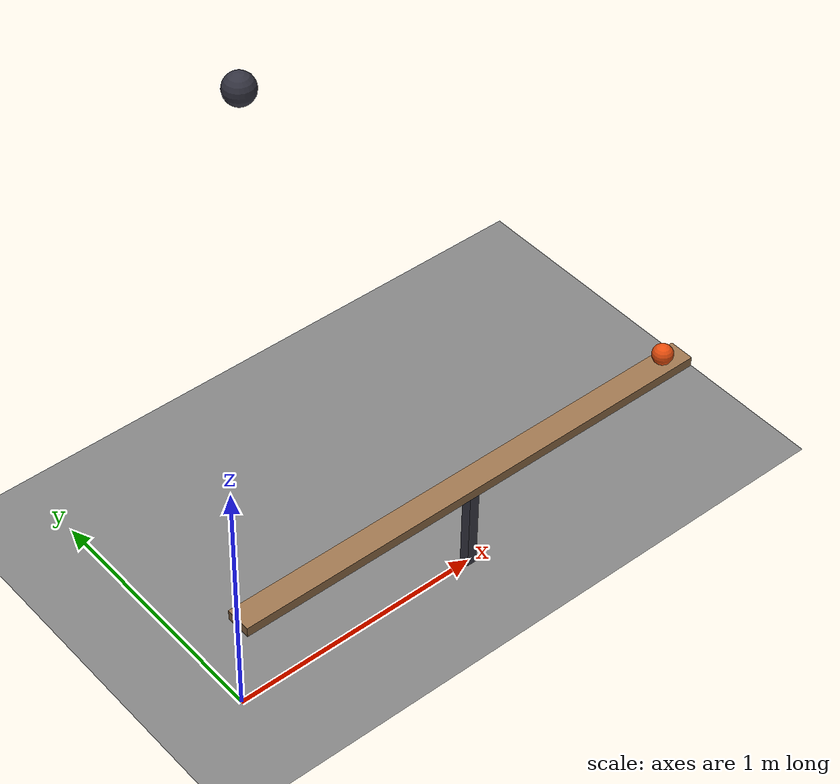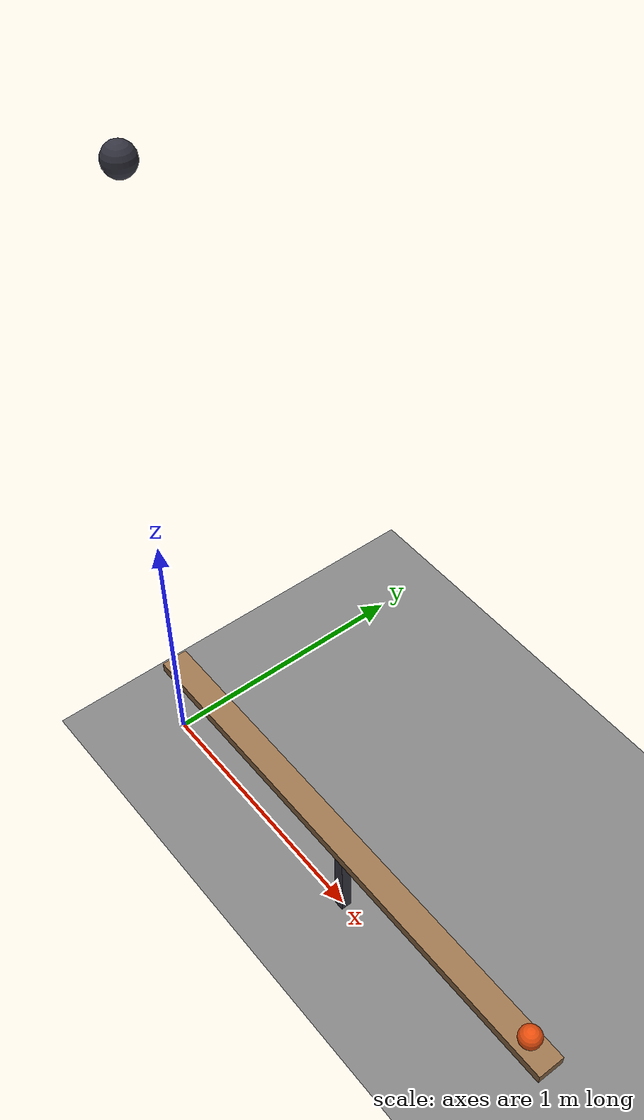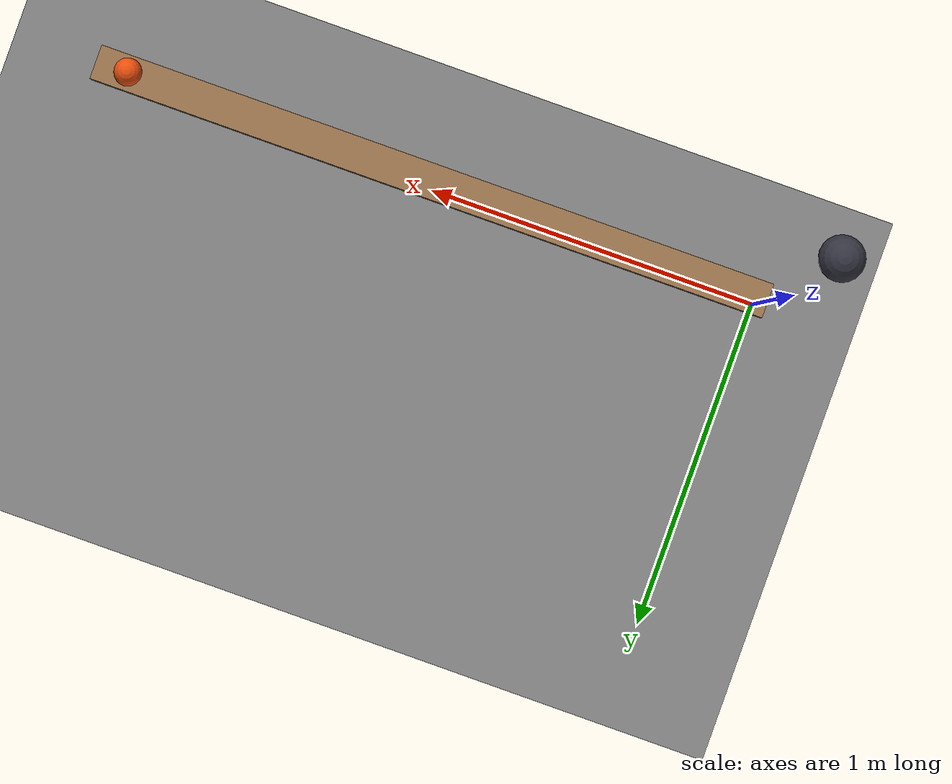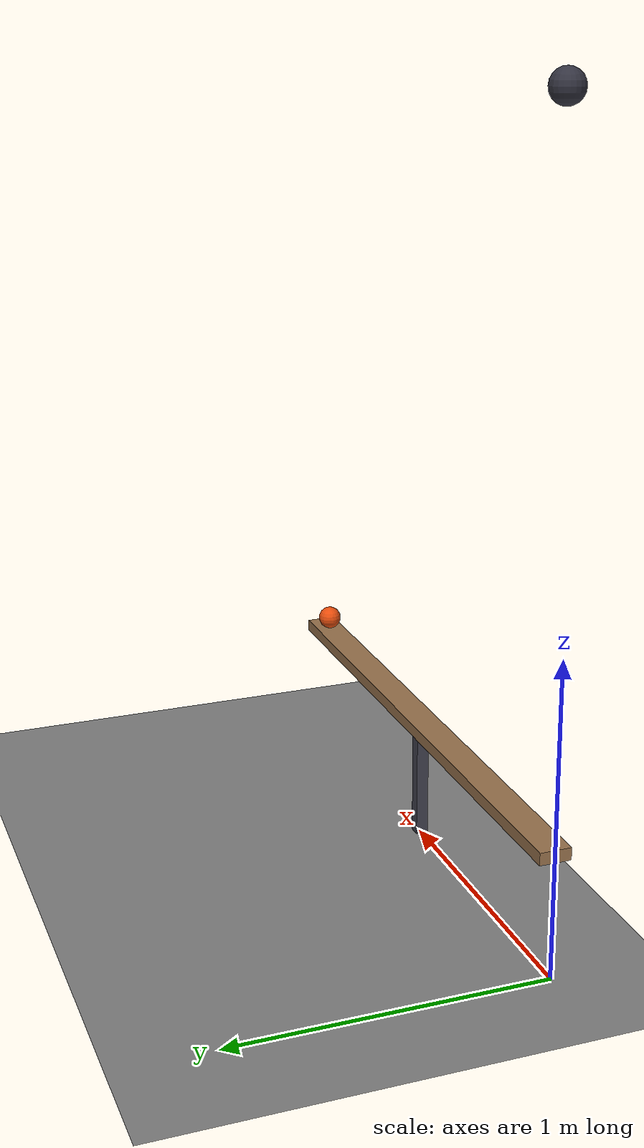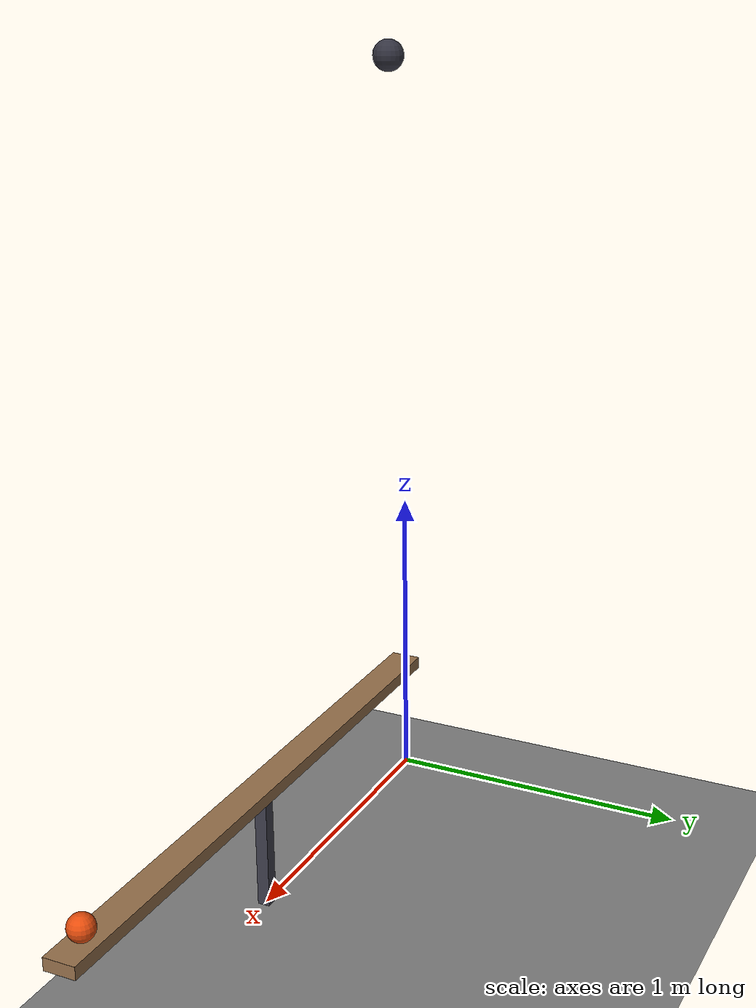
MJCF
<mujoco model="seesaw_throw">
  <compiler angle="radian"/>
  <option timestep="0.002"/>
  <worldbody>
    <geom name="floor" type="plane" size="8 8 0.1" friction="0.8 0.005 0.002"/>
    <body name="stand">
      <geom name="stand" type="box" pos="1 0 0.18" size="0.02 0.02 0.18" rgba="0.25 0.25 0.3 1"/>
    </body>
    <body name="seesaw" pos="1 0 0.4">
      <joint name="seesaw_hinge" type="hinge" pos="0 0 0" axis="0 1 0" limited="true" range="-0.349066 0" armature="0.001"/>
      <geom name="seesaw" type="box" pos="0 0 0" size="1 0.05 0.02" mass="0.5" rgba="0.6 0.45 0.3 1"/>
    </body>
    <body name="ball" pos="1.9 0 0.46">
      <freejoint/>
      <geom name="ball" type="sphere" pos="0 0 0" size="0.04" mass="0.1" condim="6" friction="0.8 0.01 0.004" rgba="0.9 0.3 0.05 1"/>
    </body>
    <body name="weight" pos="0.1 0 2.5">
      <freejoint/>
      <geom name="weight" type="sphere" pos="0 0 0" size="0.05" mass="1" solref="0.01 1" rgba="0.2 0.2 0.25 1"/>
    </body>
  </worldbody>
  <keyframe>
    <key name="start" qpos="0 1.9 0 0.46 1 0 0 0 0.1 0 2.5 1 0 0 0" qvel="0 0 0 0 0 0 0 0 0 0 0 0 0"/>
  </keyframe>
</mujoco>
